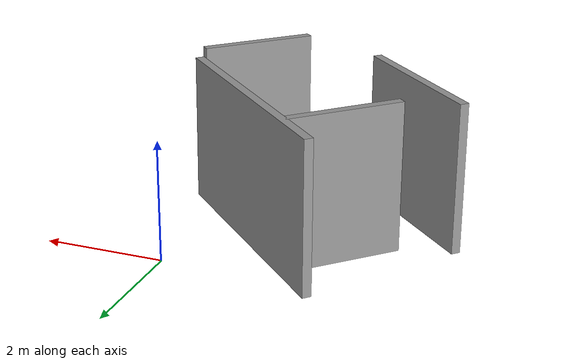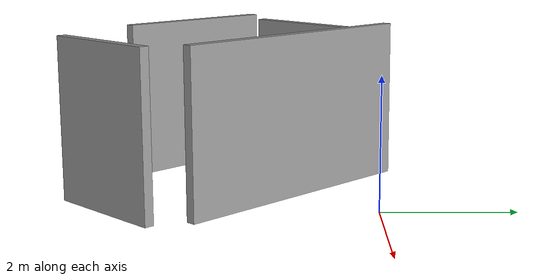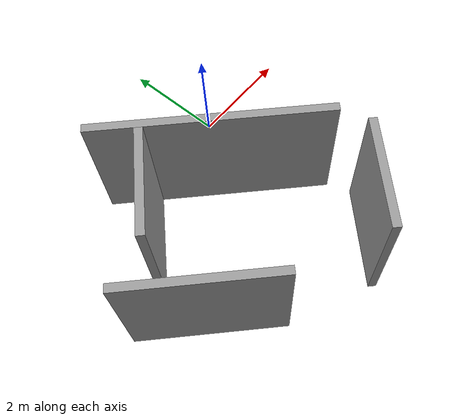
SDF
<?xml version='1.0'?>
<sdf version='1.5'>
  <model name='obs2'>
    <pose frame=''>-1.79089 -2.16549 0 0 -0 0</pose>
    <link name='Wall_0'>
      <collision name='Wall_0_Collision'>
        <geometry>
          <box>
            <size>2 0.15 2.5</size>
          </box>
        </geometry>
        <pose frame=''>0 0 1.25 0 -0 0</pose>
      </collision>
      <visual name='Wall_0_Visual'>
        <pose frame=''>0 0 1.25 0 -0 0</pose>
        <geometry>
          <box>
            <size>2 0.15 2.5</size>
          </box>
        </geometry>
        <material>
          <script>
            <uri>file://media/materials/scripts/gazebo.material</uri>
            <name>Gazebo/Grey</name>
          </script>
          <ambient>1 1 1 1</ambient>
        </material>
      </visual>
      <pose frame=''>-0.796332 1.10862 0 0 -0 0.785398</pose>
    </link>
    <link name='Wall_2'>
      <collision name='Wall_2_Collision'>
        <geometry>
          <box>
            <size>4.25 0.15 2.5</size>
          </box>
        </geometry>
        <pose frame=''>0 0 1.25 0 -0 0</pose>
      </collision>
      <visual name='Wall_2_Visual'>
        <pose frame=''>0 0 1.25 0 -0 0</pose>
        <geometry>
          <box>
            <size>4.25 0.15 2.5</size>
          </box>
        </geometry>
        <material>
          <script>
            <uri>file://media/materials/scripts/gazebo.material</uri>
            <name>Gazebo/Grey</name>
          </script>
          <ambient>1 1 1 1</ambient>
        </material>
      </visual>
      <pose frame=''>0.773928 0.982661 0 0 0 -0.785398</pose>
    </link>
    <link name='Wall_4'>
      <collision name='Wall_4_Collision'>
        <geometry>
          <box>
            <size>2.75 0.15 2.5</size>
          </box>
        </geometry>
        <pose frame=''>0 0 1.25 0 -0 0</pose>
      </collision>
      <visual name='Wall_4_Visual'>
        <pose frame=''>0 0 1.25 0 -0 0</pose>
        <geometry>
          <box>
            <size>2.75 0.15 2.5</size>
          </box>
        </geometry>
        <material>
          <script>
            <uri>file://media/materials/scripts/gazebo.material</uri>
            <name>Gazebo/Grey</name>
          </script>
          <ambient>1 1 1 1</ambient>
        </material>
      </visual>
      <pose frame=''>-1.45556 -0.740711 0 0 0 -0.785398</pose>
    </link>
    <link name='Wall_6'>
      <collision name='Wall_6_Collision'>
        <geometry>
          <box>
            <size>2 0.15 2.5</size>
          </box>
        </geometry>
        <pose frame=''>0 0 1.25 0 -0 0</pose>
      </collision>
      <visual name='Wall_6_Visual'>
        <pose frame=''>0 0 1.25 0 -0 0</pose>
        <geometry>
          <box>
            <size>2 0.15 2.5</size>
          </box>
        </geometry>
        <material>
          <script>
            <uri>file://media/materials/scripts/gazebo.material</uri>
            <name>Gazebo/Grey</name>
          </script>
          <ambient>1 1 1 1</ambient>
        </material>
      </visual>
      <pose frame=''>1.72073 -1.77816 0 0 -0 0.785398</pose>
    </link>
    <static>1</static>
  </model>
</sdf>
